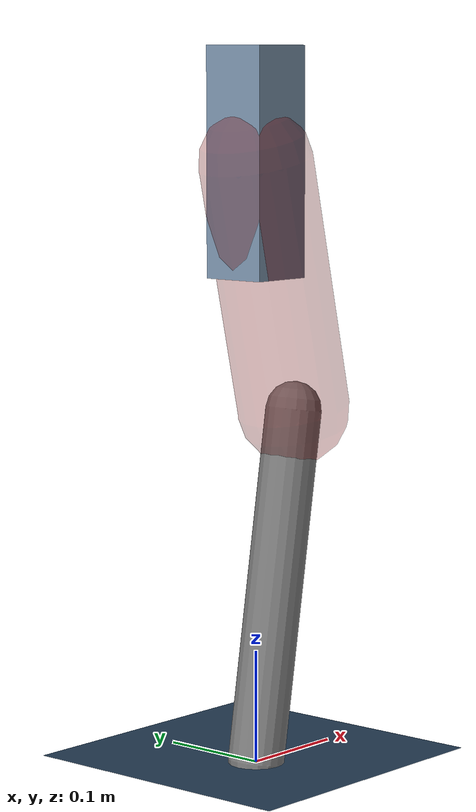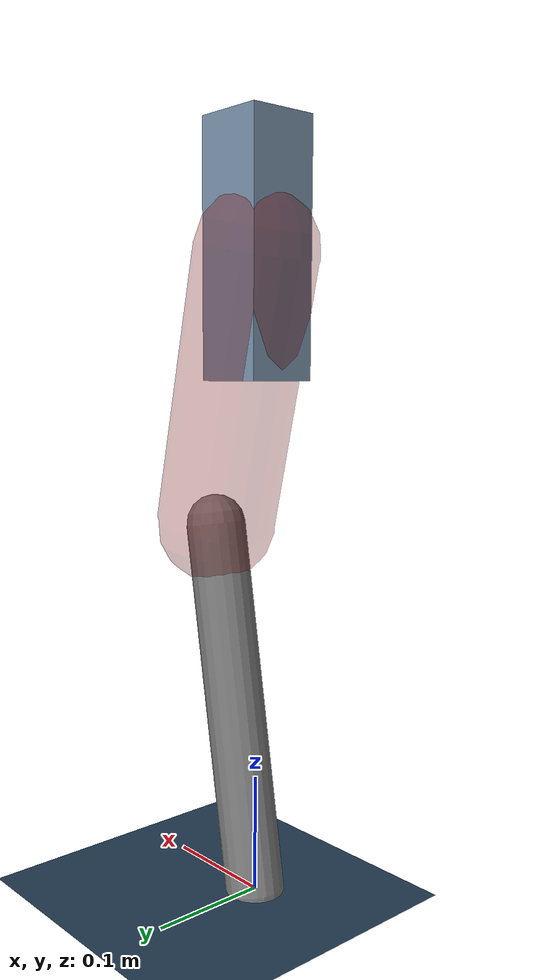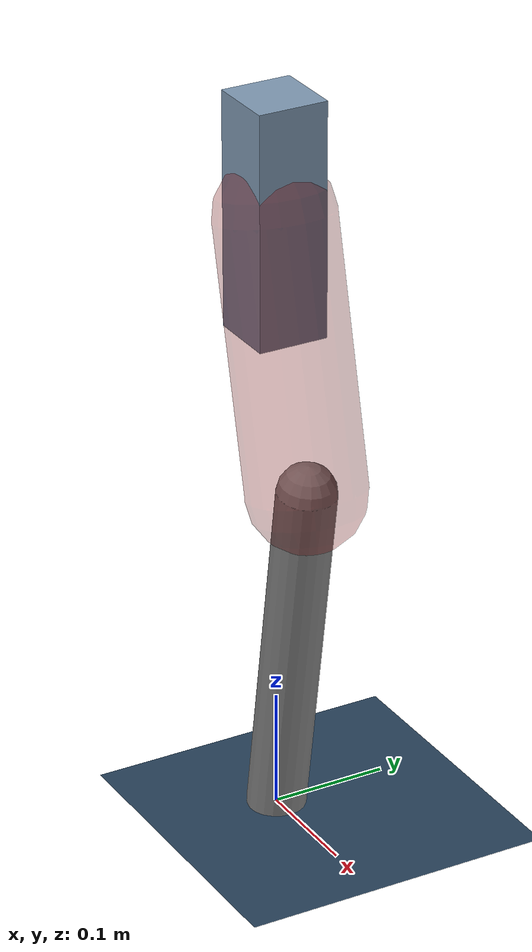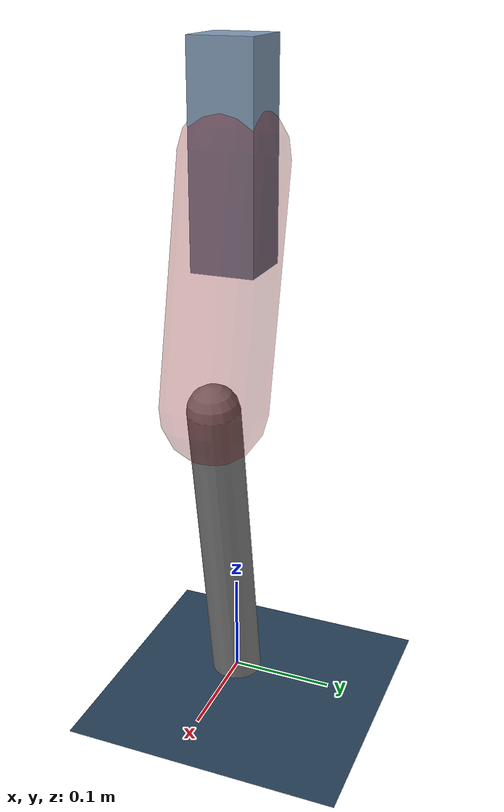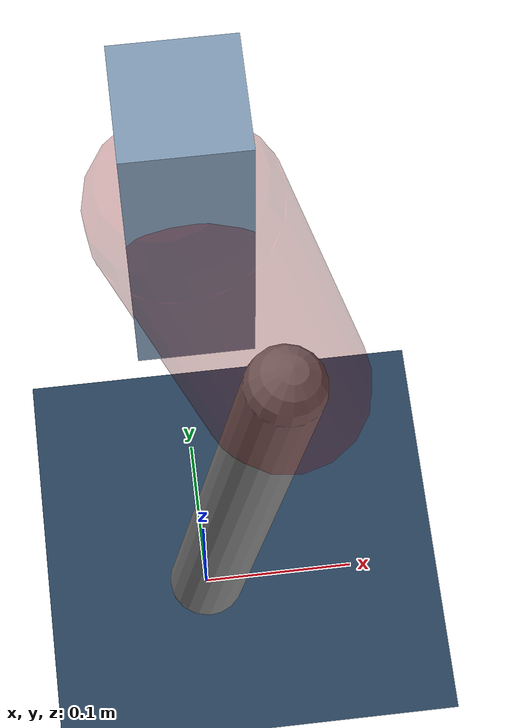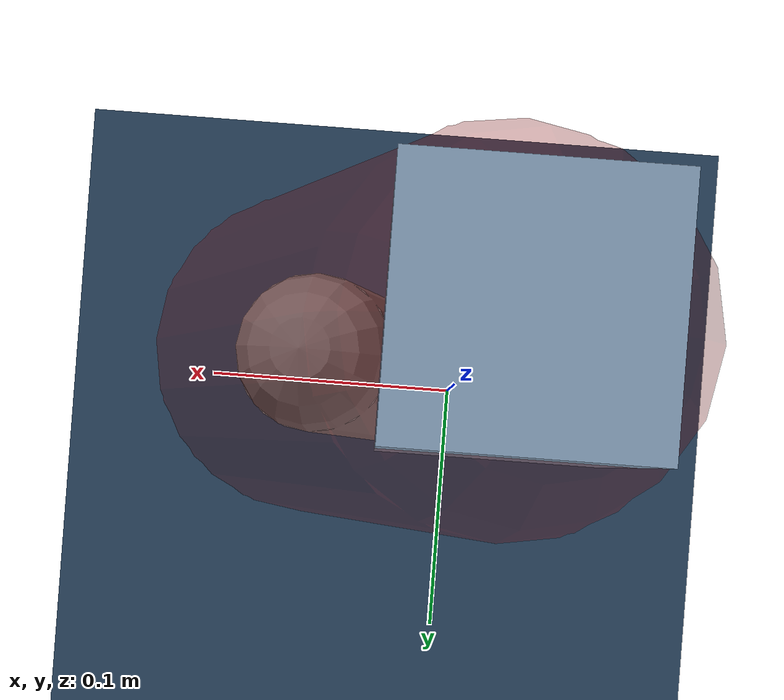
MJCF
<mujoco model="Hopper2D">
	<compiler inertiafromgeom="true" angle="radian" />
	<option timestep="0.001" integrator="implicit" cone="elliptic" solver="Newton" tolerance="1e-10" />

	<default>
		<geom contype="1" conaffinity="1" condim="3" friction="2 0.005 0.0001" solref="0.005 1" />
		<joint limited="true" damping="0.1" />
	</default>

	<asset>
		<texture name="skybox" type="skybox" builtin="gradient" rgb1=".4 .6 .8" rgb2="0 0 0" width="800" height="800" />
		<texture name="grid" type="2d" builtin="checker" rgb1=".1 .2 .3" rgb2=".2 .3 .4" width="300" height="300" mark="edge" markrgb=".2 .3 .4" />
		<material name="ground" texture="grid" texrepeat="1 1" texuniform="true" reflectance="0.1" />
		<material name="leg" rgba="0.5 0.6 0.7 1" />
	</asset>

	<worldbody>

		<geom name="floor" type="plane" size="5 5 0.25" material="ground" />

		<light directional="false" diffuse="0.8 0.8 0.8" specular="0.3 0.3 0.3" pos="0 0 2" dir="0 0 -1" />
		<light mode="targetbodycom" target="base" directional="false" diffuse="0.8 0.8 0.8" specular="0.3 0.3 0.3" pos="0 0 2" dir="0 0 -1" />

		<camera name="fixed" pos="0 -2 1" xyaxes="1 0 0 0 0 1" />
		<camera name="tracking" mode="trackcom" pos="0 -3 1" />

		<body name="root" pos="0 0 0.5309535784871415">
			<joint name="slide_x" type="slide" axis="1 0 0" range="-100 100" />
			<joint name="slide_z" type="slide" axis="0 0 1" range="0 10" />

			<body name="base" pos="0 0 0">
				<geom name="torso" type="box" size="0.03 0.03 0.1" mass="2.203" material="leg" />

				<body name="link1" pos="0 0 0" euler="0 1.3426169258201521 0">
					<joint type="hinge" axis="0 -1 0" pos="0 0 0" name="hinge1" limited="true" range="-3.14 3.14" stiffness="0" damping="0.1" />
					<geom name="thigh" type="capsule" fromto="0 0 0 0.22554687299860654 0 0" size="0.05" rgba="0.5 0 0 0.3" mass="0.793721869796377" />

					<body name="link2" pos="0.22554687299860654 0 0" euler="0 0.3906517623603051 0">
						<joint type="hinge" axis="0 -1 0" pos="0 0 0" name="hinge2" limited="true" range="-3.14 3.14" stiffness="0" damping="0.1" />
						<geom name="shank" type="capsule" fromto="0 0 0 0.315406705488535 0 0" size="0.025" mass="0.495925364390828" />

					</body>
				</body>
			</body>
		</body>
	</worldbody>

	<actuator>
		<motor name="torque1" joint="hinge1" ctrlrange="-78.6195687449335 78.6195687449335" ctrllimited="true" gear="1" />
		<motor name="torque2" joint="hinge2" ctrlrange="-40.603468542945386 40.603468542945386" ctrllimited="true" gear="1" />
	</actuator>
</mujoco>
